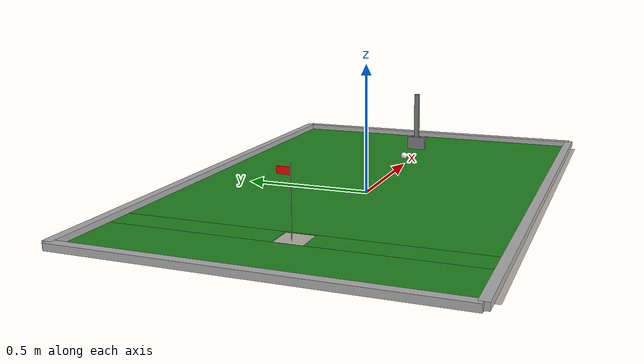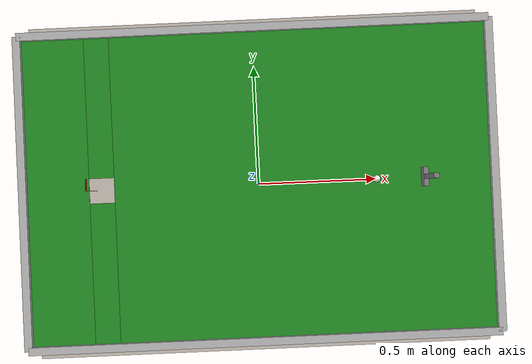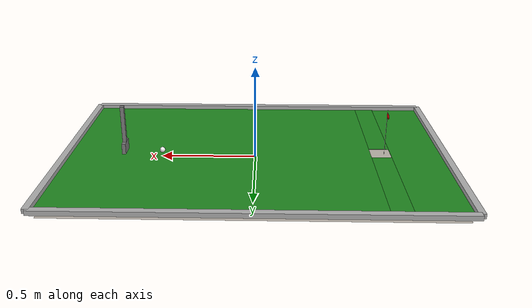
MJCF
<mujoco>

    <asset>
        <!-- Create the watermark overlay material -->
        <texture name="watermark_tex" type="2d" file="sai_logo.png" hflip="true" vflip="true" />
        <material name="watermark_mat" texture="watermark_tex" texrepeat="1 1" texuniform="false"
            rgba="1 1 1 0.05" />

        <!-- Grass-like green material for the field - more realistic coloring -->
        <material name="mat_grass" rgba="0.13 0.54 0.13 1" />
        <!-- Grey material for walls and cup - light gray for cup edge -->
        <material name="mat_wall" rgba="0.7 0.7 0.7 1" />
        <!-- White for the golf ball with slight shine -->
        <material name="mat_ball" rgba="0.95 0.95 0.95 1" />
        <!-- Red for the flag -->
        <material name="mat_flag" rgba="1 0 0 1" />
        <material name="flag_red" rgba="1 0 0 1" />
        <material name="pole_white" rgba="0.9 0.9 0.9 1" />
        <!-- Cup material -->
        <material name="mat_cup" rgba="0.1 0.1 0.1 1" />

    </asset>

    <worldbody>
        <body name='golf_course' pos='0 0 0.025'>
            <geom name="watermark" type="plane" pos="0 0 0.0026" size="0.95 0.7 0.0005"
                material="watermark_mat" contype="0" conaffinity="0" />

            <!-- Field geoms -->
            <geom name="field_left" type="box" pos="-0.86 0 0" size="0.14 0.665 0.0025"
                material="mat_grass" friction="0.6 0.005 0.0001" solimp="0.95 0.99 0.001"
                solref="0.01 1" condim="3" />
            <geom name="field_right" type="box" pos="0.1933 0 0" size="0.8067 0.665 0.0025"
                material="mat_grass" friction="0.6 0.005 0.0001" solimp="0.95 0.99 0.001"
                solref="0.01 1" condim="3" />
            <geom name="field_top" type="box" pos="-0.6667 0.3591 0" size="0.0533 0.3059 0.0025"
                material="mat_grass" friction="0.6 0.005 0.0001" solimp="0.95 0.99 0.001"
                solref="0.01 1" condim="3" />
            <geom name="field_bottom" type="box" pos="-0.6667 -0.3591 0" size="0.0533 0.3059 0.0025"
                material="mat_grass" friction="0.6 0.005 0.0001" solimp="0.95 0.99 0.001"
                solref="0.01 1" condim="3" />

            <!-- Boundary walls -->
            <geom name="wall_north" type="box" pos="0 0.665 0.0125" size="1.0 0.0166 0.0125"
                material="mat_wall" friction="0.3 0.1 0.05" solimp="0.8 0.9 0.01" solref="0.02 1" />
            <geom name="wall_south" type="box" pos="0 -0.665 0.0125" size="1.0 0.0166 0.0125"
                material="mat_wall" friction="0.3 0.1 0.05" solimp="0.8 0.9 0.01" solref="0.02 1" />
            <geom name="wall_west" type="box" pos="-1.0 0 0.0125" size="0.0167 0.665 0.0125"
                material="mat_wall" friction="0.3 0.1 0.05" solimp="0.8 0.9 0.01" solref="0.02 1" />
            <geom name="wall_east" type="box" pos="1.0 0 0.0125" size="0.0167 0.665 0.0125"
                material="mat_wall" friction="0.3 0.1 0.05" solimp="0.8 0.9 0.01" solref="0.02 1" />

            <!-- Cup geoms -->
            <geom name="cup_wall_top" type="box" pos="-0.6667 0.0566 -0.0125"
                size="0.0533 0.0033 0.0125" material="mat_cup" friction="0.1 0.005 0.0001"
                solimp="0.95 0.99 0.001" solref="0.01 1" />
            <geom name="cup_wall_bottom" type="box" pos="-0.6667 -0.0566 -0.0125"
                size="0.0533 0.0033 0.0125" material="mat_cup" friction="0.1 0.005 0.0001"
                solimp="0.95 0.99 0.001" solref="0.01 1" />
            <geom name="cup_wall_left" type="box" pos="-0.7233 0 -0.0125"
                size="0.0033 0.0532 0.0125" material="mat_cup" friction="0.1 0.005 0.0001"
                solimp="0.95 0.99 0.001" solref="0.01 1" />
            <geom name="cup_wall_right" type="box" pos="-0.6100 0 -0.0125"
                size="0.0033 0.0532 0.0125" material="mat_cup" friction="0.1 0.005 0.0001"
                solimp="0.95 0.99 0.001" solref="0.01 1" />
            <geom name="cup_base" type="box" pos="-0.6667 0 -0.025" size="0.0533 0.0532 0.0025"
                material="mat_cup" friction="0.1 0.005 0.0001" solimp="0.8 0.9 0.01" solref="0.02 1" />

            <!-- Flag -->
            <body name="flag_assembly" pos="-0.6867 0 0">
                <geom name="flag_pole" type="cylinder" pos="0 0 0.125" size="0.001 0.125"
                    material="pole_white" />
                <geom name="flag" type="box" pos="0 0.0233 0.225" size="0.0003 0.0233 0.0125"
                    material="flag_red" />
            </body>
        </body>

        <body name='golf_ball' pos='0.5 0 0.038'>
            <joint name="env:ball" type="free"></joint>
            <geom name='golf_ball' type='sphere' size='0.015' material='mat_ball' mass="0.001" />
        </body>

        <body name='golf_club' pos='0.7 0 0.025' quat='0.707105 0 0 -0.707105'>
            <joint name="env:club" type="free" damping="0.01"></joint>
            <body name="head_link" pos="0 0 0">
                <geom name="head_collision" type="box" size="0.04 0.01 0.03" pos="0 0 0.03"
                    mass="0.02" />
                <!-- Grip connection -->
                <body name="grip_link" pos="0 0 0.11">
                    <geom name="grip_collision" type="box" size="0.01 0.01 0.1" pos="0 0 0.05"
                        condim="4" solimp="0.999 0.999 0.001" solref="0.001 1"
                        friction="0.95 0.3 0.1" mass="0.02" />
                </body>
            </body>
        </body>
    </worldbody>
</mujoco>
